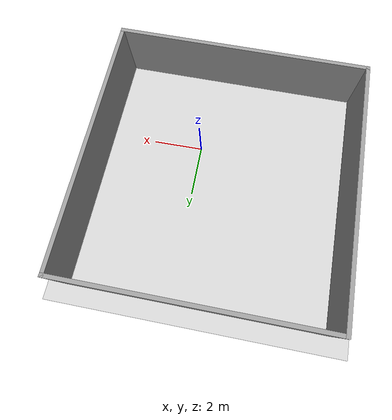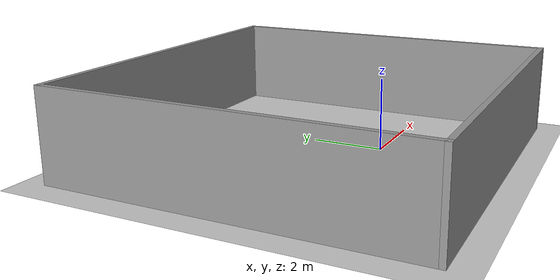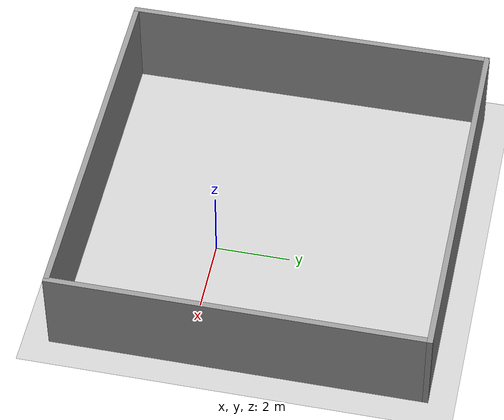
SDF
<?xml version="1.0" ?>
<sdf version="1.4">
 <world name="default">
    <scene>
      <ambient>0.68 0.68 0.68 1.0</ambient>
      <shadows> false</shadows>
      <sky>
        <sunrise/>
        <clouds>
          <speed>12</speed>
      </clouds>
      </sky>
    </scene>

    <physics type='ode'>
      <max_step_size>0.001</max_step_size>
      <real_time_factor>1</real_time_factor>
      <real_time_update_rate>1000</real_time_update_rate>
      <gravity>0 0 -9.8</gravity>
    </physics>

    <include>
      <uri>model://sun</uri>
    </include>

    <include>
      <uri>model://ISCAS_groundplane</uri>
      <pose>5 0.0 0.0 0 -0 0</pose>
    </include>

    <include>
      <uri>model://room1</uri>
    </include>

  </world>
</sdf>

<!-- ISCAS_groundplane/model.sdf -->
<sdf version="1.4">
  <model name="ISCAS_groundplane">
    <static>true</static>
    <link name="link">
      <collision name="collision">
        <geometry>
          <plane>
            <normal>0 0 1</normal>
            <size>30 30</size>
          </plane>
        </geometry>
        <surface>
          <friction>
            <ode>
              <mu>100000</mu>
              <mu2>10000</mu2>
            </ode>
          </friction>
        </surface>
      </collision>
      <visual name="visual">
        <cast_shadows>false</cast_shadows>
        <geometry>
          <plane>
            <normal>0 0 1</normal>
            <size>30 30</size>
          </plane>
        </geometry>
        <material>
          <script>
            <uri>model://ISCAS_groundplane/materials/scripts</uri>
            <uri>model://ISCAS_groundplane/materials/textures</uri>
            <name>ISCAS_groundplane/Image </name>
          </script>
        </material>
      </visual>
    </link>
  </model>
</sdf>

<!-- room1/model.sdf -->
<sdf version='1.7'>
  <model name='room1'>
    <pose>-1.06501 1.38336 0 0 -0 0</pose>
    <link name='Wall_15'>
      <collision name='Wall_15_Collision'>
        <geometry>
          <box>
            <size>9.98251 0.15 2.5</size>
          </box>
        </geometry>
        <pose>0 0 1.25 0 -0 0</pose>
      </collision>
      <visual name='Wall_15_Visual'>
        <pose>0 0 1.25 0 -0 0</pose>
        <geometry>
          <box>
            <size>9.98251 0.15 2.5</size>
          </box>
        </geometry>
        <material>
          <script>
            <uri>file://media/materials/scripts/gazebo.material</uri>
            <name>Gazebo/Grey</name>
          </script>
          <ambient>1 1 1 1</ambient>
        </material>
        <meta>
          <layer>0</layer>
        </meta>
      </visual>
      <pose>-4.925 0 0 0 -0 -1.57079</pose>
    </link>
    <link name='Wall_16'>
      <collision name='Wall_16_Collision'>
        <geometry>
          <box>
            <size>10 0.15 2.5</size>
          </box>
        </geometry>
        <pose>0 0 1.25 0 -0 0</pose>
      </collision>
      <visual name='Wall_16_Visual'>
        <pose>0 0 1.25 0 -0 0</pose>
        <geometry>
          <box>
            <size>10 0.15 2.5</size>
          </box>
        </geometry>
        <material>
          <script>
            <uri>file://media/materials/scripts/gazebo.material</uri>
            <name>Gazebo/Grey</name>
          </script>
          <ambient>1 1 1 1</ambient>
        </material>
        <meta>
          <layer>0</layer>
        </meta>
      </visual>
      <pose>1e-05 -4.91636 0 0 -0 0</pose>
    </link>
    <link name='Wall_17'>
      <collision name='Wall_17_Collision'>
        <geometry>
          <box>
            <size>9.98273 0.15 2.5</size>
          </box>
        </geometry>
        <pose>0 0 1.25 0 -0 0</pose>
      </collision>
      <visual name='Wall_17_Visual'>
        <pose>0 0 1.25 0 -0 0</pose>
        <geometry>
          <box>
            <size>9.98273 0.15 2.5</size>
          </box>
        </geometry>
        <material>
          <script>
            <uri>file://media/materials/scripts/gazebo.material</uri>
            <name>Gazebo/Grey</name>
          </script>
          <ambient>1 1 1 1</ambient>
        </material>
        <meta>
          <layer>0</layer>
        </meta>
      </visual>
      <pose>4.925 0 0 0 -0 1.5708</pose>
    </link>
    <link name='Wall_18'>
      <collision name='Wall_18_Collision'>
        <geometry>
          <box>
            <size>10 0.15 2.5</size>
          </box>
        </geometry>
        <pose>0 0 1.25 0 -0 0</pose>
      </collision>
      <visual name='Wall_18_Visual'>
        <pose>0 0 1.25 0 -0 0</pose>
        <geometry>
          <box>
            <size>10 0.15 2.5</size>
          </box>
        </geometry>
        <material>
          <script>
            <uri>file://media/materials/scripts/gazebo.material</uri>
            <name>Gazebo/Grey</name>
          </script>
          <ambient>1 1 1 1</ambient>
        </material>
        <meta>
          <layer>0</layer>
        </meta>
      </visual>
      <pose>-1e-05 4.91636 0 0 -0 3.14159</pose>
    </link>
    <static>1</static>
  </model>
</sdf>
